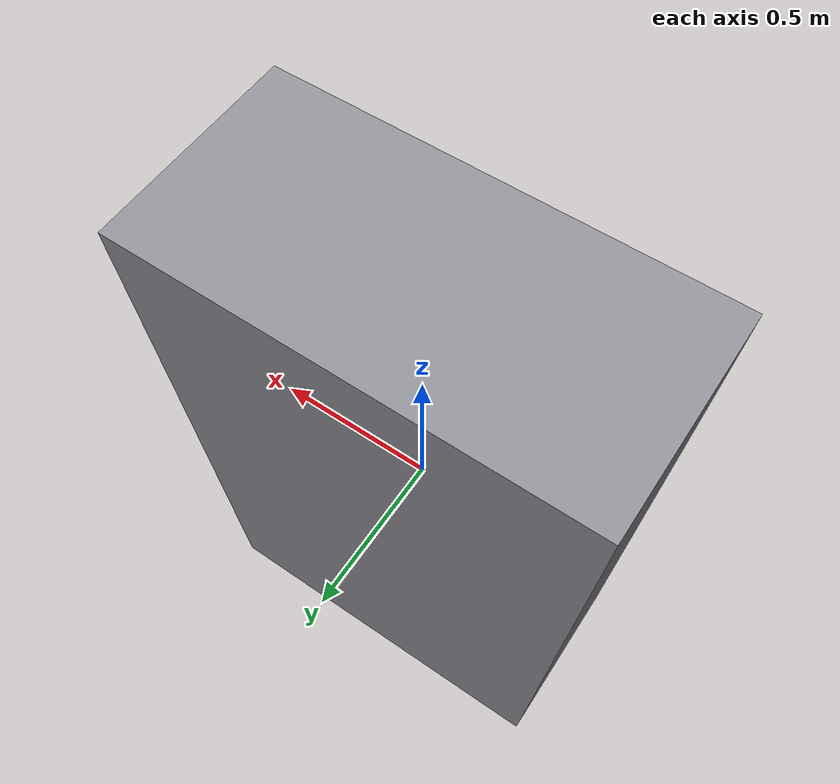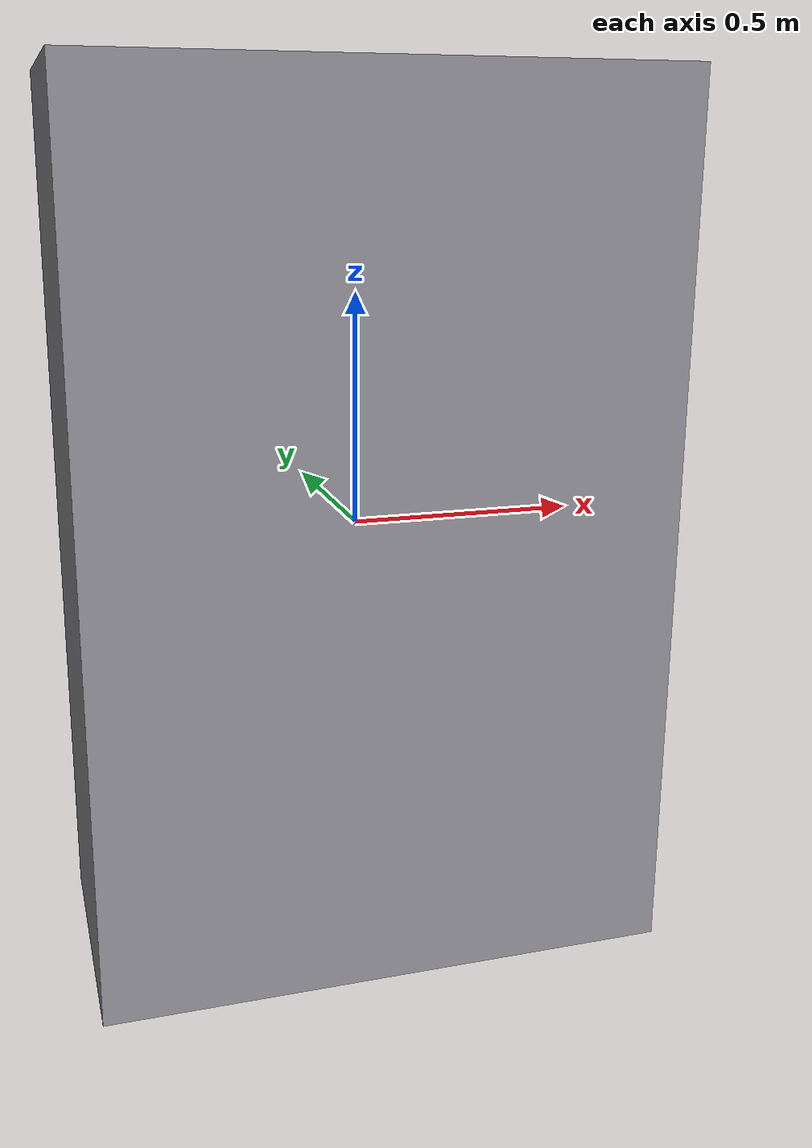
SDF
<?xml version="1.0"?>
<sdf version="1.6">
  <model name="StorageRackCoverOpen">
    <static>true</static>
    <link name="link">
      <collision name="col">
        <geometry>
          <box>
            <size>1.25 0.6 1.9</size>
          </box>
        </geometry>
      </collision>
      <visual name="vis">
        <geometry>
          <box>
            <size>1.25 0.6 1.9</size>
          </box>
        </geometry>
        <material>
          <ambient>0.55 0.55 0.58 1</ambient>
          <diffuse>0.55 0.55 0.58 1</diffuse>
        </material>
      </visual>
    </link>
  </model>
</sdf>
